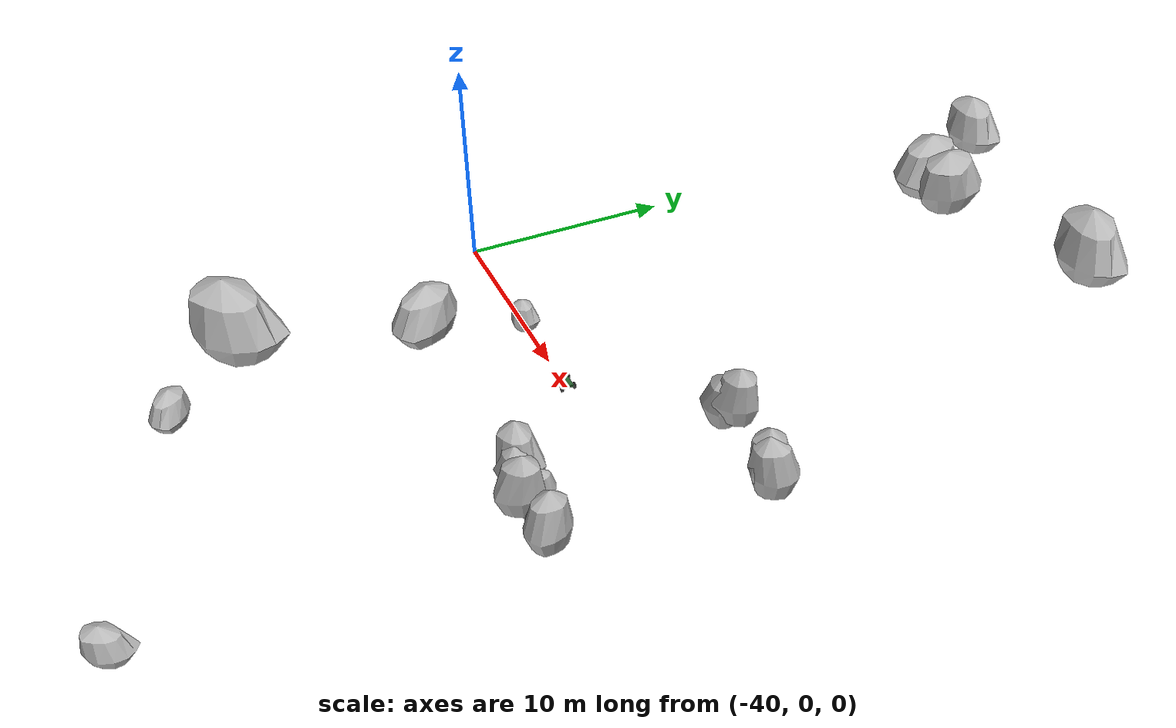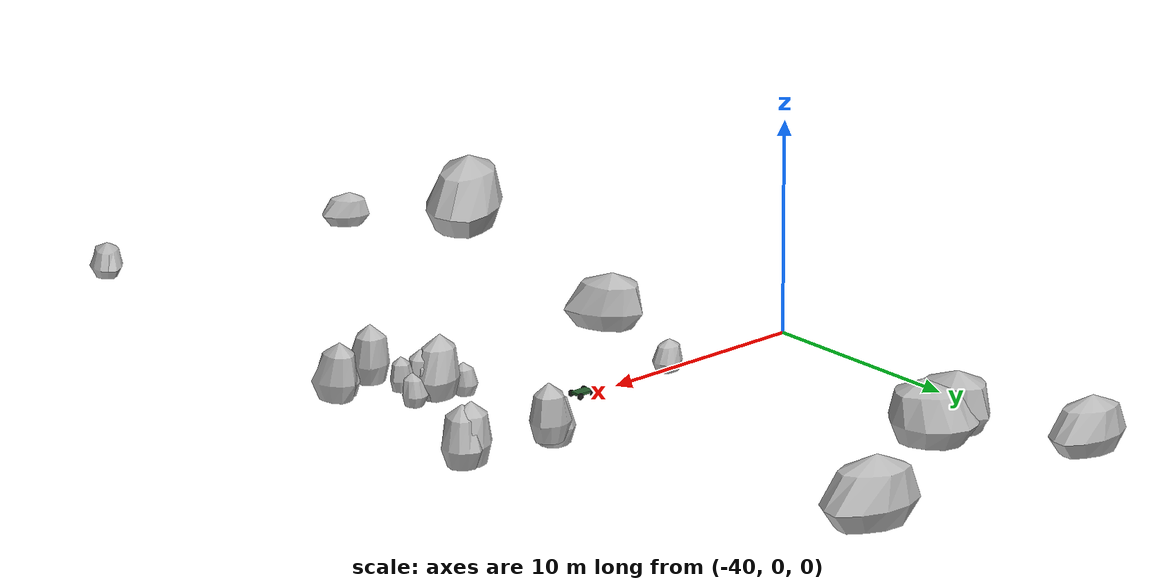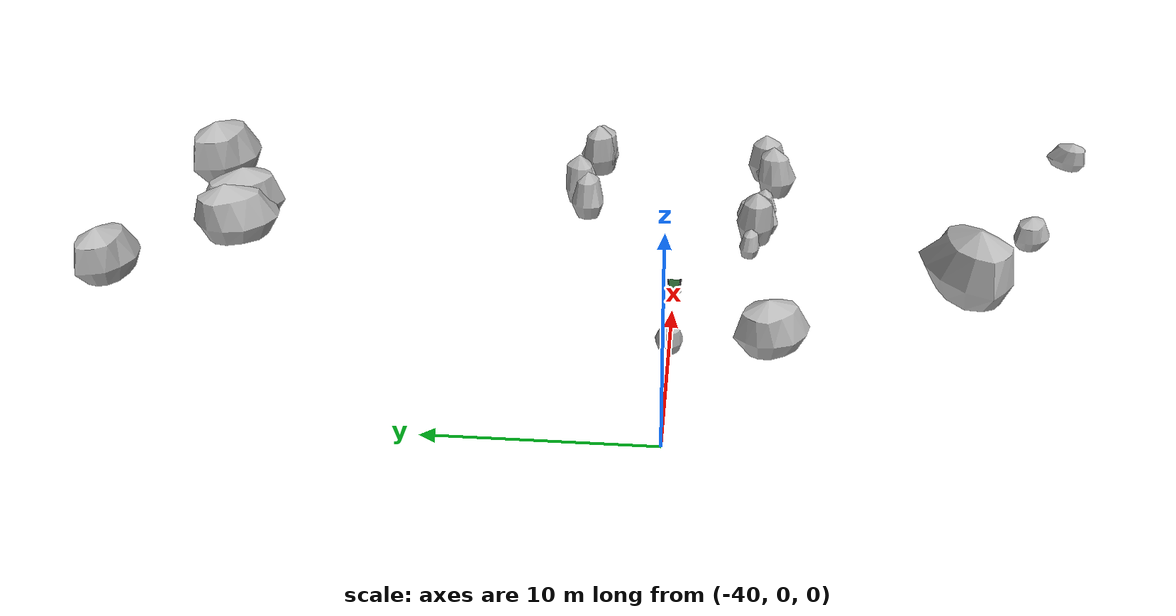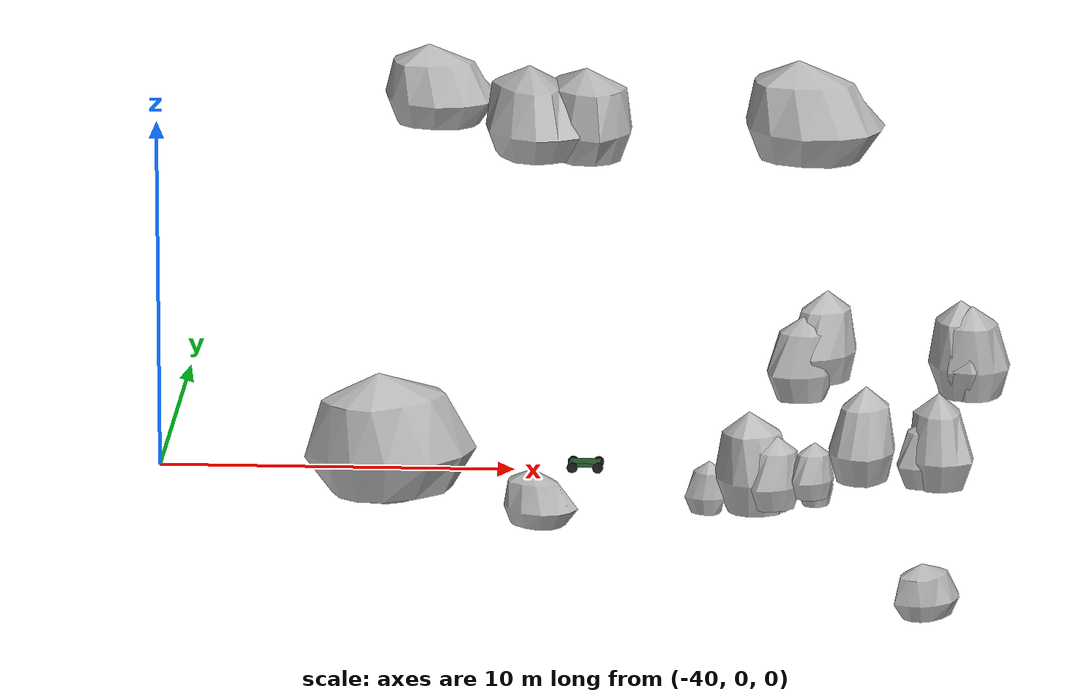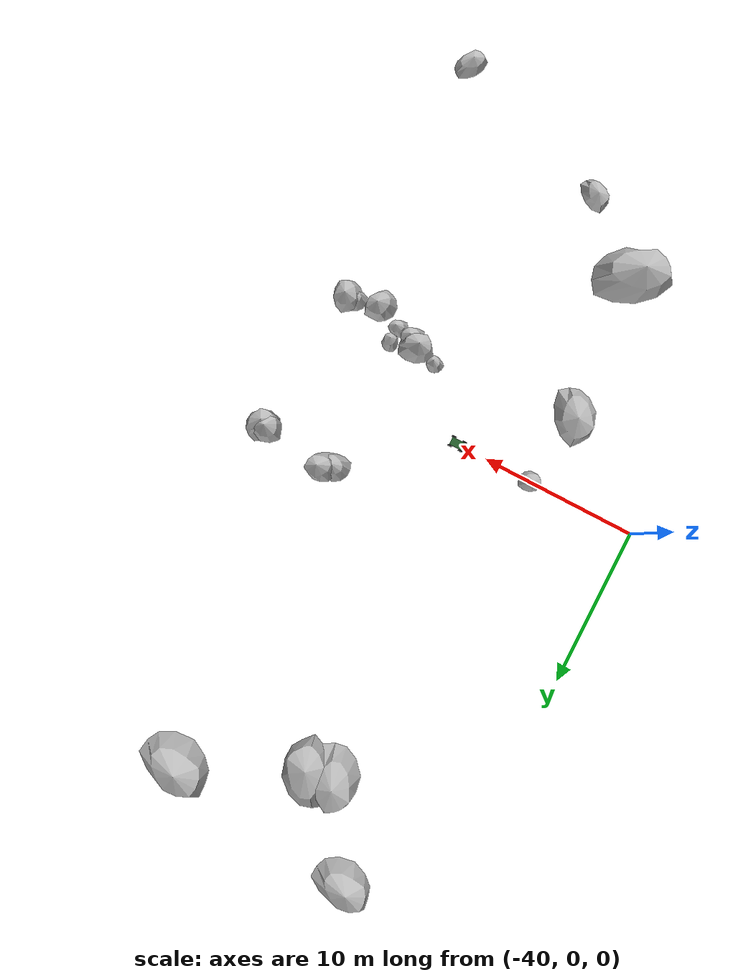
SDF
<sdf version="1.9">
 <world name="nomad_forest">
  <model name="side_rock_127">
   <static>true</static>
   <pose>-21.422221787904455 -3.5963277895794046 0.2607349523515549 0 0 1.9850792069040484</pose>
   <link name="link">
    <visual name="visual">
     <geometry>
      <mesh>
       <uri>../assets/models/rock.obj</uri>
       <scale>1.0428287923925894 1.0428287923925894 1.3556774301103662</scale>
      </mesh>
     </geometry>
    </visual>
    <collision name="rock">
     <geometry>
      <mesh>
       <uri>../assets/models/rock.obj</uri>
       <scale>1.0428287923925894 1.0428287923925894 1.3556774301103662</scale>
      </mesh>
     </geometry>
    </collision>
   </link>
  </model>
  <model name="side_rock_135">
   <static>true</static>
   <pose>-24.462024004715172 -3.67630888094185 0.0007994843676058741 0 0 3.022775806349316</pose>
   <link name="link">
    <visual name="visual">
     <geometry>
      <mesh>
       <uri>../assets/models/rock.obj</uri>
       <scale>1.0352504300163259 1.0352504300163259 1.3458255590212238</scale>
      </mesh>
     </geometry>
    </visual>
    <collision name="rock">
     <geometry>
      <mesh>
       <uri>../assets/models/rock.obj</uri>
       <scale>1.0352504300163259 1.0352504300163259 1.3458255590212238</scale>
      </mesh>
     </geometry>
    </collision>
   </link>
  </model>
  <model name="side_rock_138">
   <static>true</static>
   <pose>-21.53595657480514 5.208847323303644 1.2378371917384632 0 0 4.047732957701289</pose>
   <link name="link">
    <visual name="visual">
     <geometry>
      <mesh>
       <uri>../assets/models/rock.obj</uri>
       <scale>1.836274474714856 1.836274474714856 2.387156817129313</scale>
      </mesh>
     </geometry>
    </visual>
    <collision name="rock">
     <geometry>
      <mesh>
       <uri>../assets/models/rock.obj</uri>
       <scale>1.836274474714856 1.836274474714856 2.387156817129313</scale>
      </mesh>
     </geometry>
    </collision>
   </link>
  </model>
  <model name="side_rock_142">
   <static>true</static>
   <pose>-18.42286161743734 -4.723751850964251 1.170695194353329 0 0 3.3323604886547815</pose>
   <link name="link">
    <visual name="visual">
     <geometry>
      <mesh>
       <uri>../assets/models/rock.obj</uri>
       <scale>1.373040229994694 1.373040229994694 1.7849522989931021</scale>
      </mesh>
     </geometry>
    </visual>
    <collision name="rock">
     <geometry>
      <mesh>
       <uri>../assets/models/rock.obj</uri>
       <scale>1.373040229994694 1.373040229994694 1.7849522989931021</scale>
      </mesh>
     </geometry>
    </collision>
   </link>
  </model>
  <model name="side_rock_143">
   <static>true</static>
   <pose>-20.14568320543851 -5.015748707179765 1.3885668084815046 0 0 4.469905412584338</pose>
   <link name="link">
    <visual name="visual">
     <geometry>
      <mesh>
       <uri>../assets/models/rock.obj</uri>
       <scale>1.8445097588020847 1.8445097588020847 2.39786268644271</scale>
      </mesh>
     </geometry>
    </visual>
    <collision name="rock">
     <geometry>
      <mesh>
       <uri>../assets/models/rock.obj</uri>
       <scale>1.8445097588020847 1.8445097588020847 2.39786268644271</scale>
      </mesh>
     </geometry>
    </collision>
   </link>
  </model>
  <model name="side_rock_145">
   <static>true</static>
   <pose>-22.133785069015026 4.866700436813585 0.7970426132404723 0 0 3.47113926240068</pose>
   <link name="link">
    <visual name="visual">
     <geometry>
      <mesh>
       <uri>../assets/models/rock.obj</uri>
       <scale>1.726942094898236 1.726942094898236 2.245024723367707</scale>
      </mesh>
     </geometry>
    </visual>
    <collision name="rock">
     <geometry>
      <mesh>
       <uri>../assets/models/rock.obj</uri>
       <scale>1.726942094898236 1.726942094898236 2.245024723367707</scale>
      </mesh>
     </geometry>
    </collision>
   </link>
  </model>
  <model name="side_rock_147">
   <static>true</static>
   <pose>-17.998719179983354 -4.734620050771187 1.1564502943181518 0 0 5.260189632337872</pose>
   <link name="link">
    <visual name="visual">
     <geometry>
      <mesh>
       <uri>../assets/models/rock.obj</uri>
       <scale>1.824811906468069 1.824811906468069 2.3722554784084897</scale>
      </mesh>
     </geometry>
    </visual>
    <collision name="rock">
     <geometry>
      <mesh>
       <uri>../assets/models/rock.obj</uri>
       <scale>1.824811906468069 1.824811906468069 2.3722554784084897</scale>
      </mesh>
     </geometry>
    </collision>
   </link>
  </model>
  <model name="side_rock_149">
   <static>true</static>
   <pose>-17.336115110822767 4.565919873486608 1.0212438274842028 0 0 0.136738711869512</pose>
   <link name="link">
    <visual name="visual">
     <geometry>
      <mesh>
       <uri>../assets/models/rock.obj</uri>
       <scale>1.9493143754900246 1.9493143754900246 2.534108688137032</scale>
      </mesh>
     </geometry>
    </visual>
    <collision name="rock">
     <geometry>
      <mesh>
       <uri>../assets/models/rock.obj</uri>
       <scale>1.9493143754900246 1.9493143754900246 2.534108688137032</scale>
      </mesh>
     </geometry>
    </collision>
   </link>
  </model>
  <model name="side_rock_155">
   <static>true</static>
   <pose>-23.035882712578097 -4.017427867186396 0.16299522040511286 0 0 0.3816616909488995</pose>
   <link name="link">
    <visual name="visual">
     <geometry>
      <mesh>
       <uri>../assets/models/rock.obj</uri>
       <scale>1.9854112123599612 1.9854112123599612 2.5810345760679496</scale>
      </mesh>
     </geometry>
    </visual>
    <collision name="rock">
     <geometry>
      <mesh>
       <uri>../assets/models/rock.obj</uri>
       <scale>1.9854112123599612 1.9854112123599612 2.5810345760679496</scale>
      </mesh>
     </geometry>
    </collision>
   </link>
  </model>
  <model name="side_rock_157">
   <static>true</static>
   <pose>-22.643585544549143 -3.9386708932795327 0.20216003731892124 0 0 2.4979488177179814</pose>
   <link name="link">
    <visual name="visual">
     <geometry>
      <mesh>
       <uri>../assets/models/rock.obj</uri>
       <scale>1.295446342109936 1.295446342109936 1.6840802447429168</scale>
      </mesh>
     </geometry>
    </visual>
    <collision name="rock">
     <geometry>
      <mesh>
       <uri>../assets/models/rock.obj</uri>
       <scale>1.295446342109936 1.295446342109936 1.6840802447429168</scale>
      </mesh>
     </geometry>
    </collision>
   </link>
  </model>
  <model name="side_rock_159">
   <static>true</static>
   <pose>-21.54962396835691 -4.494917009881164 0.7122006217004955 0 0 3.827233269844649</pose>
   <link name="link">
    <visual name="visual">
     <geometry>
      <mesh>
       <uri>../assets/models/rock.obj</uri>
       <scale>1.09783920969052 1.09783920969052 1.4271909725976761</scale>
      </mesh>
     </geometry>
    </visual>
    <collision name="rock">
     <geometry>
      <mesh>
       <uri>../assets/models/rock.obj</uri>
       <scale>1.09783920969052 1.09783920969052 1.4271909725976761</scale>
      </mesh>
     </geometry>
    </collision>
   </link>
  </model>
  <model name="side_rock_161">
   <static>true</static>
   <pose>-22.60932838754436 -4.387479497386785 0.38511598848816025 0 0 3.7823914785914967</pose>
   <link name="link">
    <visual name="visual">
     <geometry>
      <mesh>
       <uri>../assets/models/rock.obj</uri>
       <scale>1.4113044813645081 1.4113044813645081 1.8346958257738606</scale>
      </mesh>
     </geometry>
    </visual>
    <collision name="rock">
     <geometry>
      <mesh>
       <uri>../assets/models/rock.obj</uri>
       <scale>1.4113044813645081 1.4113044813645081 1.8346958257738606</scale>
      </mesh>
     </geometry>
    </collision>
   </link>
  </model>
  <model name="side_rock_165">
   <static>true</static>
   <pose>-17.056407379188094 4.574103802118796 1.014861160786294 0 0 1.2072537861256416</pose>
   <link name="link">
    <visual name="visual">
     <geometry>
      <mesh>
       <uri>../assets/models/rock.obj</uri>
       <scale>1.8766754110570705 1.8766754110570705 2.4396780343741917</scale>
      </mesh>
     </geometry>
    </visual>
    <collision name="rock">
     <geometry>
      <mesh>
       <uri>../assets/models/rock.obj</uri>
       <scale>1.8766754110570705 1.8766754110570705 2.4396780343741917</scale>
      </mesh>
     </geometry>
    </collision>
   </link>
  </model>
  <model name="landmark_168">
   <static>true</static>
   <pose>-33 0 0.0 0 0 0.4</pose>
   <link name="link">
    <visual name="visual">
     <geometry><mesh><uri>../assets/models/rock.obj</uri><scale>1.3 1.3 1.3</scale></mesh></geometry>
    </visual>
    <collision name="rock">
     <geometry><mesh><uri>../assets/models/rock.obj</uri><scale>1.3 1.3 1.3</scale></mesh></geometry>
    </collision>
   </link>
  </model>
  <model name="boulder_173">
   <static>true</static>
   <pose>-32.43065072475576 -12.972336647330742 3.3838989084693525 0 0 0.6043894818588857</pose>
   <link name="link">
    <visual name="visual">
     <geometry>
      <mesh>
       <uri>../assets/models/rock.obj</uri>
       <scale>4.227473098100566 3.3819784784804527 2.959231168670396</scale>
      </mesh>
     </geometry>
    </visual>
    <collision name="rock">
     <geometry>
      <mesh>
       <uri>../assets/models/rock.obj</uri>
       <scale>4.227473098100566 3.3819784784804527 2.959231168670396</scale>
      </mesh>
     </geometry>
    </collision>
   </link>
  </model>
  <model name="boulder_174">
   <static>true</static>
   <pose>-30.656063167030958 20.204002611124253 3.726005897420646 0 0 5.226579676859378</pose>
   <link name="link">
    <visual name="visual">
     <geometry>
      <mesh>
       <uri>../assets/models/rock.obj</uri>
       <scale>3.4462284857268943 2.7569827885815155 2.412359940008826</scale>
      </mesh>
     </geometry>
    </visual>
    <collision name="rock">
     <geometry>
      <mesh>
       <uri>../assets/models/rock.obj</uri>
       <scale>3.4462284857268943 2.7569827885815155 2.412359940008826</scale>
      </mesh>
     </geometry>
    </collision>
   </link>
  </model>
  <model name="boulder_176">
   <static>true</static>
   <pose>-33.70641696642394 25.12047335266314 3.3468391620620728 0 0 6.229762094974001</pose>
   <link name="link">
    <visual name="visual">
     <geometry>
      <mesh>
       <uri>../assets/models/rock.obj</uri>
       <scale>3.1690919421031896 2.535273553682552 2.2183643594722326</scale>
      </mesh>
     </geometry>
    </visual>
    <collision name="rock">
     <geometry>
      <mesh>
       <uri>../assets/models/rock.obj</uri>
       <scale>3.1690919421031896 2.535273553682552 2.2183643594722326</scale>
      </mesh>
     </geometry>
    </collision>
   </link>
  </model>
  <model name="boulder_177">
   <static>true</static>
   <pose>-18.027484713837254 -20.63599602076182 2.5191952035790384 0 0 1.000990727459679</pose>
   <link name="link">
    <visual name="visual">
     <geometry>
      <mesh>
       <uri>../assets/models/rock.obj</uri>
       <scale>1.8509112333315882 1.4807289866652706 1.2956378633321117</scale>
      </mesh>
     </geometry>
    </visual>
    <collision name="rock">
     <geometry>
      <mesh>
       <uri>../assets/models/rock.obj</uri>
       <scale>1.8509112333315882 1.4807289866652706 1.2956378633321117</scale>
      </mesh>
     </geometry>
    </collision>
   </link>
  </model>
  <model name="boulder_180">
   <static>true</static>
   <pose>-22.361159194394848 23.81972220091827 2.716521217695703 0 0 6.1312448271969915</pose>
   <link name="link">
    <visual name="visual">
     <geometry>
      <mesh>
       <uri>../assets/models/rock.obj</uri>
       <scale>3.9127435733414937 3.130194858673195 2.7389205013390456</scale>
      </mesh>
     </geometry>
    </visual>
    <collision name="rock">
     <geometry>
      <mesh>
       <uri>../assets/models/rock.obj</uri>
       <scale>3.9127435733414937 3.130194858673195 2.7389205013390456</scale>
      </mesh>
     </geometry>
    </collision>
   </link>
  </model>
  <model name="boulder_182">
   <static>true</static>
   <pose>-29.082177395616256 20.698120945464197 3.623566808377598 0 0 2.2077109779601747</pose>
   <link name="link">
    <visual name="visual">
     <geometry>
      <mesh>
       <uri>../assets/models/rock.obj</uri>
       <scale>3.5877331465228988 2.870186517218319 2.511413202566029</scale>
      </mesh>
     </geometry>
    </visual>
    <collision name="rock">
     <geometry>
      <mesh>
       <uri>../assets/models/rock.obj</uri>
       <scale>3.5877331465228988 2.870186517218319 2.511413202566029</scale>
      </mesh>
     </geometry>
    </collision>
   </link>
  </model>
  <model name="boulder_183">
   <static>true</static>
   <pose>-33.557712413259104 -4.651035685527898 0.7215744777640879 0 0 5.387839962131294</pose>
   <link name="link">
    <visual name="visual">
     <geometry>
      <mesh>
       <uri>../assets/models/rock.obj</uri>
       <scale>3.2384884025886027 2.5907907220708823 2.2669418818120217</scale>
      </mesh>
     </geometry>
    </visual>
    <collision name="rock">
     <geometry>
      <mesh>
       <uri>../assets/models/rock.obj</uri>
       <scale>3.2384884025886027 2.5907907220708823 2.2669418818120217</scale>
      </mesh>
     </geometry>
    </collision>
   </link>
  </model>
  <model name="boulder_185">
   <static>true</static>
   <pose>-28.45809181348126 -16.486905211188787 3.5500170543694067 0 0 5.759798896429925</pose>
   <link name="link">
    <visual name="visual">
     <geometry>
      <mesh>
       <uri>../assets/models/rock.obj</uri>
       <scale>1.9044603716934247 1.52356829735474 1.3331222601853971</scale>
      </mesh>
     </geometry>
    </visual>
    <collision name="rock">
     <geometry>
      <mesh>
       <uri>../assets/models/rock.obj</uri>
       <scale>1.9044603716934247 1.52356829735474 1.3331222601853971</scale>
      </mesh>
     </geometry>
    </collision>
   </link>
  </model>
  <model name="nomad_vehicle" canonical_link="base_link">
   <static>false</static>
   <link name="base_link">
    <pose relative_to="__model__">0 0 0 0 0 0</pose>
    <inertial>
     <pose>0 0 0.2 0 0 0</pose>
     <mass>30</mass>
     <inertia><ixx>0.661</ixx><iyy>1.84225</iyy><izz>2.43125</izz><ixy>0</ixy><ixz>0</ixz><iyz>0</iyz></inertia>
    </inertial>
    <visual name="base_link_visual">
     <pose>0 0 0.2 0 0 0</pose>
     <geometry><box><size>0.85 0.5 0.12</size></box></geometry>
     <material><ambient>0.15 0.38 0.18 1</ambient><diffuse>0.15 0.38 0.18 1</diffuse></material>
    </visual>
    <collision name="base_link_collision">
     <pose>0 0 0.2 0 0 0</pose>
     <geometry><box><size>0.85 0.5 0.12</size></box></geometry>
    </collision>
    <sensor name="oak_rgb" type="rgbd_camera">
     <pose relative_to="base_link">0.46 0 0.29 0 0 0</pose>
     <always_on>true</always_on>
     <update_rate>30</update_rate>
     <visualize>false</visualize>
     <topic>/nomad/raw/oak/rgbd</topic>
     <gz_frame_id>oak_rgb_optical_frame</gz_frame_id>
     <camera>
      <optical_frame_id>oak_rgb_optical_frame</optical_frame_id>
      <horizontal_fov>1.20427718387609</horizontal_fov>
      <image><width>640</width><height>480</height><format>R8G8B8</format></image>
      <clip><near>0.05</near><far>40</far></clip>
      <depth_camera><clip><near>0.4</near><far>8</far></clip></depth_camera>
      <lens>
       <type>gnomonical</type>
       <intrinsics><fx>465.602889175182</fx><fy>471.026521321236</fy><cx>320</cx><cy>240</cy><s>0</s></intrinsics>
       <projection>
        <p_fx>465.602889175182</p_fx>
        <p_fy>471.026521321236</p_fy>
        <p_cx>320</p_cx>
        <p_cy>240</p_cy>
        <tx>0</tx>
        <ty>0</ty>
       </projection>
      </lens>
     </camera>
    </sensor>
    <sensor name="oak_left" type="camera">
     <pose relative_to="base_link">0.46 0.0375 0.29 0 0 0</pose>
     <always_on>true</always_on>
     <update_rate>30</update_rate>
     <visualize>false</visualize>
     <topic>/nomad/raw/oak/left/image_raw</topic>
     <gz_frame_id>oak_left_optical_frame</gz_frame_id>
     <camera>
      <optical_frame_id>oak_left_optical_frame</optical_frame_id>
      <camera_info_topic>/nomad/raw/oak/left/camera_info</camera_info_topic>
      <horizontal_fov>1.27409035395586</horizontal_fov>
      <image><width>640</width><height>480</height><format>L8</format></image>
      <clip><near>0.05</near><far>40</far></clip>
      <lens>
       <type>gnomonical</type>
       <intrinsics><fx>432.455180142659</fx><fy>432.971461265142</fy><cx>320</cx><cy>240</cy><s>0</s></intrinsics>
       <projection>
        <p_fx>432.455180142659</p_fx>
        <p_fy>432.971461265142</p_fy>
        <p_cx>320</p_cx>
        <p_cy>240</p_cy>
        <tx>0</tx>
        <ty>0</ty>
       </projection>
      </lens>
     </camera>
    </sensor>
    <sensor name="oak_right" type="camera">
     <pose relative_to="base_link">0.46 -0.0375 0.29 0 0 0</pose>
     <always_on>true</always_on>
     <update_rate>30</update_rate>
     <visualize>false</visualize>
     <topic>/nomad/raw/oak/right/image_raw</topic>
     <gz_frame_id>oak_right_optical_frame</gz_frame_id>
     <camera>
      <optical_frame_id>oak_right_optical_frame</optical_frame_id>
      <camera_info_topic>/nomad/raw/oak/right/camera_info</camera_info_topic>
      <horizontal_fov>1.27409035395586</horizontal_fov>
      <image><width>640</width><height>480</height><format>L8</format></image>
      <clip><near>0.05</near><far>40</far></clip>
      <lens>
       <type>gnomonical</type>
       <intrinsics><fx>432.455180142659</fx><fy>432.971461265142</fy><cx>320</cx><cy>240</cy><s>0</s></intrinsics>
       <projection>
        <p_fx>432.455180142659</p_fx>
        <p_fy>432.971461265142</p_fy>
        <p_cx>320</p_cx>
        <p_cy>240</p_cy>
        <tx>-32.4341385106994</tx>
        <ty>0</ty>
       </projection>
      </lens>
     </camera>
    </sensor>
    <sensor name="ydlidar_g2" type="gpu_lidar">
     <pose relative_to="base_link">0.15 0 0.38 0 0 0</pose>
     <topic>/nomad/raw/scan</topic>
     <gz_frame_id>scan</gz_frame_id>
     <always_on>true</always_on>
     <update_rate>10</update_rate>
     <visualize>false</visualize>
     <lidar>
      <scan>
       <horizontal>
        <samples>500</samples>
        <resolution>1</resolution>
        <min_angle>-3.14159265358979</min_angle>
        <max_angle>3.12902628297543</max_angle>
       </horizontal>
       <vertical>
        <samples>1</samples>
        <resolution>1</resolution>
        <min_angle>0</min_angle>
        <max_angle>0</max_angle>
       </vertical>
      </scan>
      <range><min>0.12</min><max>12</max><resolution>0.01</resolution></range>
      <noise><type>gaussian</type><mean>0</mean><stddev>0.01</stddev></noise>
     </lidar>
    </sensor>
    <sensor name="oak_imu" type="imu">
     <pose relative_to="base_link">0.46 0 0.29 0 0 0</pose>
     <always_on>true</always_on>
     <update_rate>200</update_rate>
     <topic>/nomad/raw/oak/imu</topic>
     <gz_frame_id>oak_imu_frame</gz_frame_id>
    </sensor>
   </link>
   <link name="front_left_steering_link">
    <pose relative_to="__model__">0.36 0.3 0.15 0 0 0</pose>
    <inertial>
     <mass>0.3</mass>
     <inertia>
      <ixx>8.6875e-05</ixx>
      <iyy>8.6875e-05</iyy>
      <izz>9.375e-05</izz>
      <ixy>0</ixy>
      <ixz>0</ixz>
      <iyz>0</iyz>
     </inertia>
    </inertial>
    <visual name="front_left_steering_link_visual">
     <geometry><cylinder><radius>0.025</radius><length>0.04</length></cylinder></geometry>
     <material><ambient>0.12 0.12 0.12 1</ambient><diffuse>0.12 0.12 0.12 1</diffuse></material>
    </visual>
   </link>
   <link name="front_left_wheel">
    <pose relative_to="__model__">0.36 0.3 0.15 0 0 0</pose>
    <inertial>
     <mass>1</mass>
     <inertia>
      <ixx>0.00615833333333333</ixx>
      <iyy>0.01125</iyy>
      <izz>0.00615833333333333</izz>
      <ixy>0</ixy>
      <ixz>0</ixz>
      <iyz>0</iyz>
     </inertia>
    </inertial>
    <visual name="front_left_wheel_visual">
     <pose>0 0 0 1.5707963267949 0 0</pose>
     <geometry><cylinder><radius>0.15</radius><length>0.08</length></cylinder></geometry>
     <material><ambient>0.12 0.12 0.12 1</ambient><diffuse>0.12 0.12 0.12 1</diffuse></material>
    </visual>
    <collision name="front_left_wheel_collision">
     <pose>0 0 0 1.5707963267949 0 0</pose>
     <geometry><cylinder><radius>0.15</radius><length>0.08</length></cylinder></geometry>
     <surface><friction><ode><mu>1</mu><mu2>1</mu2></ode></friction></surface>
    </collision>
   </link>
   <link name="front_right_steering_link">
    <pose relative_to="__model__">0.36 -0.3 0.15 0 0 0</pose>
    <inertial>
     <mass>0.3</mass>
     <inertia>
      <ixx>8.6875e-05</ixx>
      <iyy>8.6875e-05</iyy>
      <izz>9.375e-05</izz>
      <ixy>0</ixy>
      <ixz>0</ixz>
      <iyz>0</iyz>
     </inertia>
    </inertial>
    <visual name="front_right_steering_link_visual">
     <geometry><cylinder><radius>0.025</radius><length>0.04</length></cylinder></geometry>
     <material><ambient>0.12 0.12 0.12 1</ambient><diffuse>0.12 0.12 0.12 1</diffuse></material>
    </visual>
   </link>
   <link name="front_right_wheel">
    <pose relative_to="__model__">0.36 -0.3 0.15 0 0 0</pose>
    <inertial>
     <mass>1</mass>
     <inertia>
      <ixx>0.00615833333333333</ixx>
      <iyy>0.01125</iyy>
      <izz>0.00615833333333333</izz>
      <ixy>0</ixy>
      <ixz>0</ixz>
      <iyz>0</iyz>
     </inertia>
    </inertial>
    <visual name="front_right_wheel_visual">
     <pose>0 0 0 1.5707963267949 0 0</pose>
     <geometry><cylinder><radius>0.15</radius><length>0.08</length></cylinder></geometry>
     <material><ambient>0.12 0.12 0.12 1</ambient><diffuse>0.12 0.12 0.12 1</diffuse></material>
    </visual>
    <collision name="front_right_wheel_collision">
     <pose>0 0 0 1.5707963267949 0 0</pose>
     <geometry><cylinder><radius>0.15</radius><length>0.08</length></cylinder></geometry>
     <surface><friction><ode><mu>1</mu><mu2>1</mu2></ode></friction></surface>
    </collision>
   </link>
   <link name="rear_left_wheel">
    <pose relative_to="__model__">-0.36 0.3 0.15 0 0 0</pose>
    <inertial>
     <mass>1</mass>
     <inertia>
      <ixx>0.00615833333333333</ixx>
      <iyy>0.01125</iyy>
      <izz>0.00615833333333333</izz>
      <ixy>0</ixy>
      <ixz>0</ixz>
      <iyz>0</iyz>
     </inertia>
    </inertial>
    <visual name="rear_left_wheel_visual">
     <pose>0 0 0 1.5707963267949 0 0</pose>
     <geometry><cylinder><radius>0.15</radius><length>0.08</length></cylinder></geometry>
     <material><ambient>0.12 0.12 0.12 1</ambient><diffuse>0.12 0.12 0.12 1</diffuse></material>
    </visual>
    <collision name="rear_left_wheel_collision">
     <pose>0 0 0 1.5707963267949 0 0</pose>
     <geometry><cylinder><radius>0.15</radius><length>0.08</length></cylinder></geometry>
     <surface><friction><ode><mu>1</mu><mu2>1</mu2></ode></friction></surface>
    </collision>
   </link>
   <link name="rear_right_wheel">
    <pose relative_to="__model__">-0.36 -0.3 0.15 0 0 0</pose>
    <inertial>
     <mass>1</mass>
     <inertia>
      <ixx>0.00615833333333333</ixx>
      <iyy>0.01125</iyy>
      <izz>0.00615833333333333</izz>
      <ixy>0</ixy>
      <ixz>0</ixz>
      <iyz>0</iyz>
     </inertia>
    </inertial>
    <visual name="rear_right_wheel_visual">
     <pose>0 0 0 1.5707963267949 0 0</pose>
     <geometry><cylinder><radius>0.15</radius><length>0.08</length></cylinder></geometry>
     <material><ambient>0.12 0.12 0.12 1</ambient><diffuse>0.12 0.12 0.12 1</diffuse></material>
    </visual>
    <collision name="rear_right_wheel_collision">
     <pose>0 0 0 1.5707963267949 0 0</pose>
     <geometry><cylinder><radius>0.15</radius><length>0.08</length></cylinder></geometry>
     <surface><friction><ode><mu>1</mu><mu2>1</mu2></ode></friction></surface>
    </collision>
   </link>
   <joint name="front_left_steering_joint" type="revolute">
    <parent>base_link</parent>
    <child>front_left_steering_link</child>
    <pose relative_to="front_left_steering_link">0 0 0 0 0 0</pose>
    <axis>
     <xyz>0 0 1</xyz>
     <limit><lower>-0.55</lower><upper>0.55</upper><effort>12</effort><velocity>2</velocity></limit>
     <dynamics><damping>0.02</damping></dynamics>
    </axis>
   </joint>
   <joint name="front_left_wheel_joint" type="revolute">
    <parent>front_left_steering_link</parent>
    <child>front_left_wheel</child>
    <pose relative_to="front_left_wheel">0 0 0 0 0 0</pose>
    <axis>
     <xyz>0 1 0</xyz>
     <limit><lower>-1e+16</lower><upper>1e+16</upper><effort>20</effort><velocity>20</velocity></limit>
     <dynamics><damping>0.02</damping></dynamics>
    </axis>
   </joint>
   <joint name="front_right_steering_joint" type="revolute">
    <parent>base_link</parent>
    <child>front_right_steering_link</child>
    <pose relative_to="front_right_steering_link">0 0 0 0 0 0</pose>
    <axis>
     <xyz>0 0 1</xyz>
     <limit><lower>-0.55</lower><upper>0.55</upper><effort>12</effort><velocity>2</velocity></limit>
     <dynamics><damping>0.02</damping></dynamics>
    </axis>
   </joint>
   <joint name="front_right_wheel_joint" type="revolute">
    <parent>front_right_steering_link</parent>
    <child>front_right_wheel</child>
    <pose relative_to="front_right_wheel">0 0 0 0 0 0</pose>
    <axis>
     <xyz>0 1 0</xyz>
     <limit><lower>-1e+16</lower><upper>1e+16</upper><effort>20</effort><velocity>20</velocity></limit>
     <dynamics><damping>0.02</damping></dynamics>
    </axis>
   </joint>
   <joint name="rear_left_wheel_joint" type="revolute">
    <parent>base_link</parent>
    <child>rear_left_wheel</child>
    <pose relative_to="rear_left_wheel">0 0 0 0 0 0</pose>
    <axis>
     <xyz>0 1 0</xyz>
     <limit><lower>-1e+16</lower><upper>1e+16</upper><effort>20</effort><velocity>20</velocity></limit>
     <dynamics><damping>0.02</damping></dynamics>
    </axis>
   </joint>
   <joint name="rear_right_wheel_joint" type="revolute">
    <parent>base_link</parent>
    <child>rear_right_wheel</child>
    <pose relative_to="rear_right_wheel">0 0 0 0 0 0</pose>
    <axis>
     <xyz>0 1 0</xyz>
     <limit><lower>-1e+16</lower><upper>1e+16</upper><effort>20</effort><velocity>20</velocity></limit>
     <dynamics><damping>0.02</damping></dynamics>
    </axis>
   </joint>
   <frame name="oak_rgb_optical_frame" attached_to="base_link">
    <pose relative_to="base_link">0.46 0 0.29 -1.5707963267949 0 -1.5707963267949</pose>
   </frame>
   <frame name="oak_depth_optical_frame" attached_to="base_link">
    <pose relative_to="base_link">0.46 0 0.29 -1.5707963267949 0 -1.5707963267949</pose>
   </frame>
   <frame name="oak_left_optical_frame" attached_to="base_link">
    <pose relative_to="base_link">0.46 0.0375 0.29 -1.5707963267949 0 -1.5707963267949</pose>
   </frame>
   <frame name="oak_right_optical_frame" attached_to="base_link">
    <pose relative_to="base_link">0.46 -0.0375 0.29 -1.5707963267949 0 -1.5707963267949</pose>
   </frame>
   <frame name="scan" attached_to="base_link"><pose relative_to="base_link">0.15 0 0.38 0 0 0</pose></frame>
   <frame name="oak_imu_frame" attached_to="base_link">
    <pose relative_to="base_link">0.46 0 0.29 0 0 0</pose>
   </frame>
   <plugin filename="gz-sim-ackermann-steering-system" name="gz::sim::systems::AckermannSteering">
    <left_joint>rear_left_wheel_joint</left_joint>
    <right_joint>rear_right_wheel_joint</right_joint>
    <left_steering_joint>front_left_steering_joint</left_steering_joint>
    <right_steering_joint>front_right_steering_joint</right_steering_joint>
    <wheel_base>0.72</wheel_base>
    <wheel_separation>0.6</wheel_separation>
    <kingpin_width>0.6</kingpin_width>
    <wheel_radius>0.15</wheel_radius>
    <steering_limit>0.55</steering_limit>
    <min_velocity>-1</min_velocity>
    <max_velocity>1</max_velocity>
    <min_acceleration>-0.6</min_acceleration>
    <max_acceleration>0.6</max_acceleration>
    <topic>/nomad/vehicle/cmd_vel</topic>
    <odom_topic>/nomad/vehicle/wheel_odom</odom_topic>
    <tf_topic>/nomad/vehicle/wheel_tf</tf_topic>
    <frame_id>odom</frame_id>
    <child_frame_id>base_link</child_frame_id>
    <odom_publish_frequency>50</odom_publish_frequency>
   </plugin>
   <plugin filename="gz-sim-odometry-publisher-system" name="gz::sim::systems::OdometryPublisher">
    <dimensions>3</dimensions>
    <odom_frame>odom</odom_frame>
    <robot_base_frame>base_link</robot_base_frame>
    <odom_topic>/nomad/vehicle/odom</odom_topic>
    <tf_topic>/nomad/vehicle/tf</tf_topic>
    <odom_publish_frequency>50</odom_publish_frequency>
    <gaussian_noise>0</gaussian_noise>
   </plugin>
   <plugin filename="gz-sim-joint-state-publisher-system" name="gz::sim::systems::JointStatePublisher">
    <topic>/nomad/vehicle/joint_states</topic>
    <update_rate>50</update_rate>
    <joint_name>front_left_steering_joint</joint_name>
    <joint_name>front_left_wheel_joint</joint_name>
    <joint_name>front_right_steering_joint</joint_name>
    <joint_name>front_right_wheel_joint</joint_name>
    <joint_name>rear_left_wheel_joint</joint_name>
    <joint_name>rear_right_wheel_joint</joint_name>
   </plugin>
   <pose>-28 0 0.03 0 0 0</pose>
  </model>
 </world>
</sdf>
